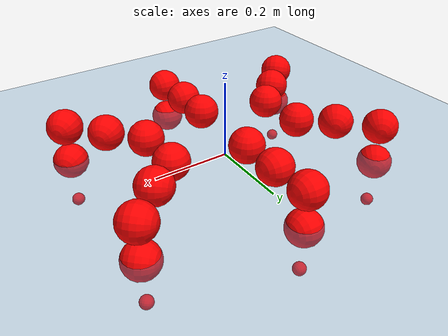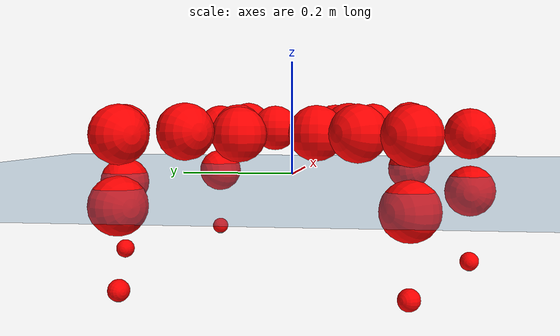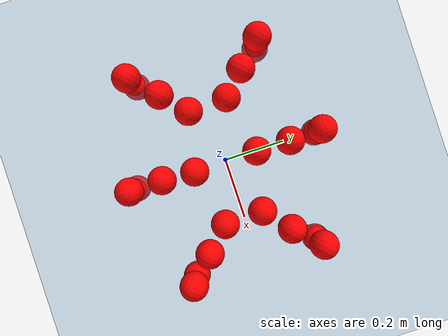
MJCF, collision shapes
<mujoco model="Golem">
  <compiler angle="radian" assetdir="assets" balanceinertia="true" inertiafromgeom="false"/>

  <option timestep="0.005" density="1.2" viscosity="2e-05"/>

  <size nkey="1"/>

  <visual>
    <quality shadowsize="8192"/>
    <map shadowclip="0.5"/>
  </visual>

  <default>
    <default class="/">
      <joint armature="0.01" damping="0.01" frictionloss="0.01"/>
      <geom contype="0" conaffinity="0" group="1" solref="-1000 -80"/>
      <site size="0.01 0.005 0.005" group="5"/>
      <general forcelimited="true" biastype="affine" gainprm="25" biasprm="0 -25 -0.5"/>
      <default class="visual">
        <geom type="mesh" group="2"/>
      </default>
      <default class="collision">
        <geom group="3"/>
      </default>
      <default class="foot">
        <geom size="0.01 0 0" condim="6" group="4" priority="1" solimp="0.015 1 0.01"/>
      </default>
      <default class="reward_collision_sphere">
        <geom group="5" rgba="1 0 0 1"/>
      </default>
    </default>
  </default>

  <asset>
    <texture type="skybox" colorspace="auto" name="//unnamed_texture_0" builtin="gradient" rgb1="0.95 0.95 0.95" rgb2="0.95 0.95 0.95" width="100" height="600"/>
    <texture type="2d" colorspace="auto" name="texplane" builtin="checker" rgb1="0.345 0.575 0.748" rgb2="0.345 0.575 0.748" markrgb="1 1 1" width="512" height="512"/>
    <material name="MatPlane" class="/" texture="texplane" texuniform="true" texrepeat="2 2" specular="0.9"/>
    <mesh name="body" class="/" file="body.stl" scale="0.001 0.001 0.001"/>
    <mesh name="coxa" class="/" file="coxa.stl" scale="0.001 0.001 0.001"/>
    <mesh name="femur" class="/" file="femur.stl" scale="0.001 0.001 0.001"/>
    <mesh name="tibia" class="/" file="tibia.stl" scale="0.001 0.001 0.001"/>
    <mesh name="tarsus" class="/" file="tarsus.stl" scale="0.001 0.001 0.001"/>
  </asset>

  <worldbody>
    <geom name="floor" class="/" size="100 100 0.125" type="plane" group="0" material="MatPlane"/>
    <light name="toplight_shadow" class="/" pos="0 0 5" dir="0.0990148 0.0990148 -0.990148" type="directional" ambient="0.04 0.04 0.04" diffuse="0.55 0.55 0.55" specular="0.12 0.12 0.12"/>
    <light name="toplight_fill" class="/" pos="0 0 5" dir="0.0990148 0.0990148 -0.990148" type="directional" castshadow="false" ambient="0.04 0.04 0.04" diffuse="0.3 0.3 0.3" specular="0.08 0.08 0.08"/>
    <body name="trunk" pos="0.00229188 -0.000318229 0.00151577" quat="0.999996 0.00200178 -0.00106412 0.00146159">
      <inertial pos="-0.0021482 -0.00656511 -0.00664208" quat="0.999998 0.00125708 -0.00172124 1.40489e-05" mass="5.3545" diaginertia="0.022419 0.00981309 0.0258485"/>
      <joint name="//unnamed_joint_0" type="free"/>
      <geom name="//unnamed_geom_1" class="/" pos="0 0 0.0761632" quat="1 0 0 0" type="mesh" rgba="0.9 0.9 0.9 1" mesh="body"/>
      <site name="imu" class="/" pos="0.148729 -0.0179944 0.118624" size="0.0111165"/>
      <camera name="track" class="/" pos="0 -1.97943 0" quat="0.707107 0.707107 0 0" mode="trackcom"/>
      <camera name="ego_camera" class="/" pos="0.150173 0 0.119005" quat="-0.5 -0.5 0.5 0.5"/>
      <body name="coxa_RR" pos="-0.202306 -0.0860882 0.0758246" quat="0.382727 -0.000591709 0.00193806 -0.923859">
        <inertial pos="-0.00127077 0.000649331 0.000530534" quat="0.999437 -0.0325816 -0.00589051 -0.00534888" mass="0.239202" diaginertia="0.0195516 0.00909637 0.0219602"/>
        <joint name="coxa_joint_RR" class="/" pos="0 0 0" axis="-0.00346332 0.00622684 -0.999975" range="-3.14733 3.2706" armature="0.00761373" damping="0" frictionloss="0.0115404"/>
        <geom name="//unnamed_geom_2" class="/" type="mesh" rgba="0.2 0.2 0.2 1" mesh="coxa"/>
        <geom name="//unnamed_geom_3" class="reward_collision_sphere" size="0.0444658" pos="-0.0346553 0 0"/>
        <body name="femur_RR" pos="0.0686399 -0.00407345 0.00176728" quat="0.499974 -0.500108 0.499738 0.50018">
          <inertial pos="-0.00481468 0.000726708 -0.000427374" quat="0.999752 0.0209495 -0.00671093 -0.0033692" mass="0.270633" diaginertia="0.0202389 0.00934016 0.0242403"/>
          <joint name="femur_joint_RR" class="/" pos="0 0 0" axis="-0.000472596 -0.00062559 -1" range="-3.15203 3.16146" armature="0.0107642" damping="0.0463507" frictionloss="0.0115866"/>
          <geom name="//unnamed_geom_4" class="/" type="mesh" rgba="0.9 0.9 0.9 1" mesh="femur"/>
          <geom name="//unnamed_geom_5" class="reward_collision_sphere" size="0.0444658"/>
          <body name="tibia_RR" pos="0.000284685 -0.112288 -0.000565045" quat="-3.42934e-05 1 -4.14373e-05 6.98499e-05">
            <inertial pos="0.0025132 0.00273225 0.00171865" quat="0.999993 -0.0025535 0.00232265 0.00134878" mass="0.252193" diaginertia="0.0208393 0.0092793 0.0230753"/>
            <joint name="tibia_joint_RR" class="/" pos="0 0 0" axis="-0.0151702 0.00704987 0.99986" range="-3.1598 3.12726" armature="0.0108408" damping="0.0159826" frictionloss="0.0114006"/>
            <geom name="//unnamed_geom_6" class="/" type="mesh" rgba="0.2 0.2 0.2 1" mesh="tibia"/>
            <geom name="//unnamed_geom_7" class="reward_collision_sphere" size="0.0444658"/>
            <body name="tarsus_RR" pos="0.105706 -0.00265255 -0.000571504" quat="1 9.89989e-06 -0.000486305 -1.5802e-05">
              <inertial pos="0.0733696 -0.00134987 -0.000803371" quat="0.501096 0.499868 0.499146 0.499888" mass="0.258637" diaginertia="0.018695 0.00870266 0.0227689"/>
              <joint name="tarsus_joint_RR" class="/" pos="0 0 0" axis="-0.0170906 -0.00830237 0.999819" stiffness="0.00727929" range="-3.13237 3.13355" armature="0.0123345" damping="0.0509687" frictionloss="0.012821"/>
              <geom name="//unnamed_geom_8" class="/" type="mesh" rgba="0.9 0.9 0.9 1" mesh="tarsus"/>
              <geom name="foot_1" class="foot" size="0.00956993" pos="0.12938 0 0" quat="0 -0.707107 0 0.707107"/>
              <geom name="//unnamed_geom_10" class="reward_collision_sphere" size="0.0444658"/>
              <geom name="//unnamed_geom_11" class="reward_collision_sphere" size="0.0166747" pos="0.124181 0 0"/>
              <site name="foot_1" class="foot" pos="0.12938 0 0" quat="0 -0.707107 0 0.707107" size="0.0111165"/>
            </body>
          </body>
        </body>
      </body>
      <body name="coxa_RM" pos="0.00477095 -0.135255 0.0812371" quat="0.707218 0.000489544 -0.000194044 -0.706995">
        <inertial pos="0.00450155 0.00159424 -0.00204386" quat="0.999996 -0.000471218 -0.000528281 -0.00264628" mass="0.255411" diaginertia="0.0192274 0.00893215 0.0226601"/>
        <joint name="coxa_joint_RM" class="/" pos="0 0 0" axis="-4.71251e-06 -3.89082e-06 -1" range="-3.1979 3.15294" armature="0.00982574" damping="0.0135036" frictionloss="0.0109106"/>
        <geom name="//unnamed_geom_12" class="/" type="mesh" rgba="0.2 0.2 0.2 1" mesh="coxa"/>
        <geom name="//unnamed_geom_13" class="reward_collision_sphere" size="0.0444658" pos="-0.0346553 0 0"/>
        <body name="femur_RM" pos="0.0687132 -0.00607398 -0.00446122" quat="0.4999 -0.500196 0.500026 0.499878">
          <inertial pos="0.00202155 0.000378764 0.00110726" quat="0.999551 -0.0177893 0.0228741 0.00762754" mass="0.299221" diaginertia="0.0221815 0.0104524 0.0251281"/>
          <joint name="femur_joint_RM" class="/" pos="0 0 0" axis="-0.00129245 0.00106563 -0.999999" range="-3.014 3.09869" armature="0.0121449" damping="0.0253456" frictionloss="0.0109838"/>
          <geom name="//unnamed_geom_14" class="/" type="mesh" rgba="0.9 0.9 0.9 1" mesh="femur"/>
          <geom name="//unnamed_geom_15" class="reward_collision_sphere" size="0.0444658"/>
          <body name="tibia_RM" pos="0.00440238 -0.108445 0.00166572" quat="-0.00235874 0.999995 -0.00208893 -0.000783719">
            <inertial pos="0.00188195 0.000553179 -0.00207" quat="0.999911 0.000799694 0.0131536 -0.00228297" mass="0.275377" diaginertia="0.0197615 0.00975861 0.0250772"/>
            <joint name="tibia_joint_RM" class="/" pos="0 0 0" axis="0.00210473 0.00792636 0.999966" stiffness="0.0258451" range="-3.13558 3.12374" armature="0.00980574" damping="0.0179736" frictionloss="0.00995423"/>
            <geom name="//unnamed_geom_16" class="/" type="mesh" rgba="0.2 0.2 0.2 1" mesh="tibia"/>
            <geom name="//unnamed_geom_17" class="reward_collision_sphere" size="0.0444658"/>
            <body name="tarsus_RM" pos="0.100292 0.0012143 0.00278407" quat="0.999997 -0.000513958 0.0020973 -0.000756947">
              <inertial pos="0.068494 0.00206269 -0.000261679" quat="0.497494 0.502894 0.504148 0.495411" mass="0.278635" diaginertia="0.0203405 0.00964024 0.0238896"/>
              <joint name="tarsus_joint_RM" class="/" pos="0 0 0" axis="0.0050865 -0.0177218 0.99983" stiffness="0.0032622" range="-3.10104 3.01059" armature="0.0114753" damping="0.00864421" frictionloss="0.0146855"/>
              <geom name="//unnamed_geom_18" class="/" type="mesh" rgba="0.9 0.9 0.9 1" mesh="tarsus"/>
              <geom name="foot_2" class="foot" size="0.0119956" pos="0.12938 0 0" quat="0 -0.707107 0 0.707107"/>
              <geom name="//unnamed_geom_20" class="reward_collision_sphere" size="0.0444658"/>
              <geom name="//unnamed_geom_21" class="reward_collision_sphere" size="0.0166747" pos="0.124181 0 0"/>
              <site name="foot_2" class="foot" pos="0.12938 0 0" quat="0 -0.707107 0 0.707107" size="0.0111165"/>
            </body>
          </body>
        </body>
      </body>
      <body name="coxa_RF" pos="0.21005 -0.0856579 0.0796234" quat="0.9238 -0.00140812 -0.00180141 -0.382868">
        <inertial pos="-0.00483411 -0.00509824 0.000288284" quat="0.999988 -0.00325265 -0.00165354 0.00318083" mass="0.280383" diaginertia="0.0197919 0.00954441 0.0237628"/>
        <joint name="coxa_joint_RF" class="/" pos="0 0 0" axis="-0.00233325 -0.00306162 -0.999993" stiffness="0.0349084" range="-3.13242 3.24164" armature="0.010414" damping="0" frictionloss="0.0124233"/>
        <geom name="//unnamed_geom_22" class="/" type="mesh" rgba="0.2 0.2 0.2 1" mesh="coxa"/>
        <geom name="//unnamed_geom_23" class="reward_collision_sphere" size="0.0444658" pos="-0.0346553 0 0"/>
        <body name="femur_RF" pos="0.0672927 -0.00069027 0.00290536" quat="0.500725 -0.501129 0.498359 0.499782">
          <inertial pos="0.00150371 0.000691387 -0.00592743" quat="0.99982 0.0090606 -0.00336714 -0.0163056" mass="0.289639" diaginertia="0.0222435 0.0101976 0.0272279"/>
          <joint name="femur_joint_RF" class="/" pos="0 0 0" axis="-0.0263033 -0.0168837 -0.999511" range="-3.18079 3.14959" armature="0.00727479" damping="0.0200924" frictionloss="0.00963158"/>
          <geom name="//unnamed_geom_24" class="/" type="mesh" rgba="0.9 0.9 0.9 1" mesh="femur"/>
          <geom name="//unnamed_geom_25" class="reward_collision_sphere" size="0.0444658"/>
          <body name="tibia_RF" pos="-0.0036898 -0.106625 0.00070911" quat="-7.53847e-05 1 -9.26128e-05 -0.000115377">
            <inertial pos="-0.000270558 0.000863859 -0.000502529" quat="0.999891 -0.00767157 -0.0101632 0.00751037" mass="0.276259" diaginertia="0.0219743 0.00989159 0.0226786"/>
            <joint name="tibia_joint_RF" class="/" pos="0 0 0" axis="0.000598315 -0.00475592 0.999989" stiffness="0.00718987" range="-3.14613 3.03587" armature="0.0124878" damping="0.00647927" frictionloss="0.0119093"/>
            <geom name="//unnamed_geom_26" class="/" type="mesh" rgba="0.2 0.2 0.2 1" mesh="tibia"/>
            <geom name="//unnamed_geom_27" class="reward_collision_sphere" size="0.0444658"/>
            <body name="tarsus_RF" pos="0.0985408 -0.00043196 -0.000570243" quat="0.999995 -0.0010441 -0.000830327 -0.00277172">
              <inertial pos="0.06787 -2.97701e-05 0.000684514" quat="0.501307 0.497212 0.49629 0.505142" mass="0.276112" diaginertia="0.0207476 0.00942242 0.0254858"/>
              <joint name="tarsus_joint_RF" class="/" pos="0 0 0" axis="0.00594997 -0.00597693 0.999964" range="-3.14839 3.10344" armature="0.0110509" damping="0.0146388" frictionloss="0.010528"/>
              <geom name="//unnamed_geom_28" class="/" type="mesh" rgba="0.9 0.9 0.9 1" mesh="tarsus"/>
              <geom name="foot_3" class="foot" size="0.00928843" pos="0.12938 0 0" quat="0 -0.707107 0 0.707107"/>
              <geom name="//unnamed_geom_30" class="reward_collision_sphere" size="0.0444658"/>
              <geom name="//unnamed_geom_31" class="reward_collision_sphere" size="0.0166747" pos="0.124181 0 0"/>
              <site name="foot_3" class="foot" pos="0.12938 0 0" quat="0 -0.707107 0 0.707107" size="0.0111165"/>
            </body>
          </body>
        </body>
      </body>
      <body name="coxa_LR" pos="-0.206716 0.0865793 0.0733055" quat="0.38398 0.00153778 0.000490159 0.92334">
        <inertial pos="-0.00041507 -0.00139635 0.0018798" quat="0.999995 0.00323672 -0.000279889 -6.6915e-05" mass="0.276286" diaginertia="0.0217812 0.00988006 0.026003"/>
        <joint name="coxa_joint_LR" class="/" pos="0 0 0" axis="-0.0198944 -8.20384e-05 -0.999802" range="-3.20804 3.13644" armature="0.0109074" damping="0" frictionloss="0.0112538"/>
        <geom name="//unnamed_geom_32" class="/" type="mesh" rgba="0.2 0.2 0.2 1" mesh="coxa"/>
        <geom name="//unnamed_geom_33" class="reward_collision_sphere" size="0.0444658" pos="-0.0346553 0 0"/>
        <body name="femur_LR" pos="0.0642656 0.000785179 0.00521652" quat="0.499617 -0.500407 0.500228 0.499748">
          <inertial pos="0.000538238 -0.00251755 -5.18476e-05" quat="0.999991 -0.00037674 -0.00141231 0.00394737" mass="0.278284" diaginertia="0.0204898 0.00951267 0.023485"/>
          <joint name="femur_joint_LR" class="/" pos="0 0 0" axis="0.0155781 0.00129861 0.999878" stiffness="0.0121149" range="-3.04881 3.0513" armature="0.0114673" damping="0.0295993" frictionloss="0.0101177"/>
          <geom name="//unnamed_geom_34" class="/" type="mesh" rgba="0.9 0.9 0.9 1" mesh="femur"/>
          <geom name="//unnamed_geom_35" class="reward_collision_sphere" size="0.0444658"/>
          <body name="tibia_LR" pos="0.00309009 -0.110301 -0.00012733" quat="-0.000680385 1 0.000663967 -3.10353e-05">
            <inertial pos="0.0063239 -0.00152221 0.00504242" quat="0.999926 0.0117484 0.00304477 -0.000455486" mass="0.274518" diaginertia="0.0200089 0.00875037 0.0235908"/>
            <joint name="tibia_joint_LR" class="/" pos="0 0 0" axis="-0.00337362 -0.00221802 -0.999992" stiffness="0.00987081" range="-3.23931 3.08137" armature="0.0111607" damping="0.00601415" frictionloss="0.0104233"/>
            <geom name="//unnamed_geom_36" class="/" type="mesh" rgba="0.2 0.2 0.2 1" mesh="tibia"/>
            <geom name="//unnamed_geom_37" class="reward_collision_sphere" size="0.0444658"/>
            <body name="tarsus_LR" pos="0.103999 0.000778342 0.0018564" quat="1 4.49465e-05 -9.94221e-05 3.22148e-05">
              <inertial pos="0.0708554 -0.000509307 0.00187296" quat="0.503742 0.493789 0.50084 0.501574" mass="0.25846" diaginertia="0.0195689 0.00878769 0.0224324"/>
              <joint name="tarsus_joint_LR" class="/" pos="0 0 0" axis="0.0202632 -0.015814 -0.99967" range="-3.1887 3.19605" armature="0.00975146" damping="0.020187" frictionloss="0.00959962"/>
              <geom name="//unnamed_geom_38" class="/" type="mesh" rgba="0.9 0.9 0.9 1" mesh="tarsus"/>
              <geom name="foot_4" class="foot" size="0.0119225" pos="0.12938 0 0" quat="0.707107 0 -0.707107 0"/>
              <geom name="//unnamed_geom_40" class="reward_collision_sphere" size="0.0444658"/>
              <geom name="//unnamed_geom_41" class="reward_collision_sphere" size="0.0166747" pos="0.124181 0 0"/>
              <site name="foot_4" class="foot" pos="0.12938 0 0" quat="0.707107 0 -0.707107 0" size="0.0111165"/>
            </body>
          </body>
        </body>
      </body>
      <body name="coxa_LM" pos="0.00277217 0.134102 0.0780848" quat="0.707113 -0.000367289 -5.3066e-05 0.707101">
        <inertial pos="-0.00486613 -0.00604774 0.00175781" quat="0.999999 0.000696098 -0.000708521 0.000863546" mass="0.278274" diaginertia="0.0212353 0.00955963 0.0243144"/>
        <joint name="coxa_joint_LM" class="/" pos="0 0 0" axis="-0.0125433 0.00209996 -0.999919" stiffness="0.0131147" range="-3.16088 3.16071" armature="0.00897618" damping="0.0377044" frictionloss="0.010632"/>
        <geom name="//unnamed_geom_42" class="/" type="mesh" rgba="0.2 0.2 0.2 1" mesh="coxa"/>
        <geom name="//unnamed_geom_43" class="reward_collision_sphere" size="0.0444658" pos="-0.0346553 0 0"/>
        <body name="femur_LM" pos="0.0729226 -0.00151524 5.52727e-05" quat="0.497951 -0.501522 0.499439 0.501081">
          <inertial pos="0.00166572 -0.000964437 -0.00256032" quat="0.999898 -0.00336402 0.00812254 0.0112546" mass="0.282755" diaginertia="0.0203605 0.00995365 0.0251404"/>
          <joint name="femur_joint_LM" class="/" pos="0 0 0" axis="-0.00851692 0.00461571 0.999953" range="-3.1204 3.13511" armature="0.0145662" damping="0.0246643" frictionloss="0.012177"/>
          <geom name="//unnamed_geom_44" class="/" type="mesh" rgba="0.9 0.9 0.9 1" mesh="femur"/>
          <geom name="//unnamed_geom_45" class="reward_collision_sphere" size="0.0444658"/>
          <body name="tibia_LM" pos="-0.000322739 -0.103979 0.00245027" quat="0.000298983 1 -0.000271812 0.000607279">
            <inertial pos="0.00156122 -0.00419054 0.000106088" quat="0.999975 0.00388351 0.00498924 -0.00307539" mass="0.287242" diaginertia="0.0209696 0.00921045 0.0225253"/>
            <joint name="tibia_joint_LM" class="/" pos="0 0 0" axis="-0.0052809 1.56752e-05 -0.999986" range="-3.16523 3.09142" armature="0.0113115" damping="0.0262899" frictionloss="0.0117199"/>
            <geom name="//unnamed_geom_46" class="/" type="mesh" rgba="0.2 0.2 0.2 1" mesh="tibia"/>
            <geom name="//unnamed_geom_47" class="reward_collision_sphere" size="0.0444658"/>
            <body name="tarsus_LM" pos="0.0991494 0.00243238 0.00158531" quat="1 0.000293801 7.4983e-05 -7.15471e-05">
              <inertial pos="0.0660908 -0.000770677 8.07178e-05" quat="0.499861 0.501609 0.499098 0.499429" mass="0.239919" diaginertia="0.0195035 0.00923822 0.0237198"/>
              <joint name="tarsus_joint_LM" class="/" pos="0 0 0" axis="-0.00202522 -0.00213374 -0.999996" range="-3.13709 3.17668" armature="0.0106405" damping="0" frictionloss="0.0110258"/>
              <geom name="//unnamed_geom_48" class="/" type="mesh" rgba="0.9 0.9 0.9 1" mesh="tarsus"/>
              <geom name="foot_5" class="foot" size="0.0118317" pos="0.12938 0 0" quat="0.707107 0 -0.707107 0"/>
              <geom name="//unnamed_geom_50" class="reward_collision_sphere" size="0.0444658"/>
              <geom name="//unnamed_geom_51" class="reward_collision_sphere" size="0.0166747" pos="0.124181 0 0"/>
              <site name="foot_5" class="foot" pos="0.12938 0 0" quat="0.707107 0 -0.707107 0" size="0.0111165"/>
            </body>
          </body>
        </body>
      </body>
      <body name="coxa_LF" pos="0.207634 0.0839421 0.0772061" quat="0.923927 3.26792e-05 -3.04537e-05 0.382569">
        <inertial pos="-0.000664922 0.00218849 0.000477815" quat="1 -0.00056056 -4.01345e-05 -8.92917e-06" mass="0.280422" diaginertia="0.0206041 0.00921718 0.0230184"/>
        <joint name="coxa_joint_LF" class="/" pos="0 0 0" axis="0.00942482 0.0259232 -0.99962" range="-3.09626 3.13065" armature="0.0118233" damping="0.0099276" frictionloss="0.0111668"/>
        <geom name="//unnamed_geom_52" class="/" type="mesh" rgba="0.2 0.2 0.2 1" mesh="coxa"/>
        <geom name="//unnamed_geom_53" class="reward_collision_sphere" size="0.0444658" pos="-0.0346553 0 0"/>
        <body name="femur_LF" pos="0.0690681 -0.00629736 0.00653373" quat="0.500146 -0.500699 0.500004 0.499151">
          <inertial pos="0.00380857 0.000263143 -0.00193332" quat="0.999988 -0.000156302 -0.00372882 0.00319521" mass="0.269075" diaginertia="0.0204505 0.00991962 0.0251623"/>
          <joint name="femur_joint_LF" class="/" pos="0 0 0" axis="0.0176855 -0.00149989 0.999842" range="-3.1483 3.23145" armature="0.0128583" damping="0.0169003" frictionloss="0.0124012"/>
          <geom name="//unnamed_geom_54" class="/" type="mesh" rgba="0.9 0.9 0.9 1" mesh="femur"/>
          <geom name="//unnamed_geom_55" class="reward_collision_sphere" size="0.0444658"/>
          <body name="tibia_LF" pos="0.00509101 -0.110043 0.000148596" quat="-0.000593358 1 0.000592367 -0.000488385">
            <inertial pos="0.00165069 0.000222769 0.002414" quat="0.999719 -0.0201923 0.0110566 -0.00570008" mass="0.282309" diaginertia="0.0207171 0.0096877 0.024126"/>
            <joint name="tibia_joint_LF" class="/" pos="0 0 0" axis="-0.00357347 0.000295649 -0.999994" range="-3.12726 3.14713" armature="0.0147649" damping="0.0336754" frictionloss="0.0114617"/>
            <geom name="//unnamed_geom_56" class="/" type="mesh" rgba="0.2 0.2 0.2 1" mesh="tibia"/>
            <geom name="//unnamed_geom_57" class="reward_collision_sphere" size="0.0444658"/>
            <body name="tarsus_LF" pos="0.0985627 0.000494588 -6.78491e-06" quat="0.999995 -0.0020583 0.0012886 -0.00214587">
              <inertial pos="0.0663634 0.00442014 0.00185411" quat="0.501644 0.503748 0.50072 0.493832" mass="0.29055" diaginertia="0.0208003 0.00987513 0.0239667"/>
              <joint name="tarsus_joint_LF" class="/" pos="0 0 0" axis="0.0140395 -0.0157278 -0.999778" stiffness="0.00471213" range="-3.21762 3.18554" armature="0.0122823" damping="0" frictionloss="0.0107287"/>
              <geom name="//unnamed_geom_58" class="/" type="mesh" rgba="0.9 0.9 0.9 1" mesh="tarsus"/>
              <geom name="foot_6" class="foot" size="0.0124267" pos="0.12938 0 0" quat="0.707107 0 -0.707107 0"/>
              <geom name="//unnamed_geom_60" class="reward_collision_sphere" size="0.0444658"/>
              <geom name="//unnamed_geom_61" class="reward_collision_sphere" size="0.0166747" pos="0.124181 0 0"/>
              <site name="foot_6" class="foot" pos="0.12938 0 0" quat="0.707107 0 -0.707107 0" size="0.0111165"/>
            </body>
          </body>
        </body>
      </body>
    </body>
  </worldbody>

  <contact>
    <pair class="/" geom1="floor" geom2="foot_1" name="//unnamed_contact_0"/>
    <pair class="/" geom1="floor" geom2="foot_2" name="//unnamed_contact_1"/>
    <pair class="/" geom1="floor" geom2="foot_3" name="//unnamed_contact_2"/>
    <pair class="/" geom1="floor" geom2="foot_4" name="//unnamed_contact_3"/>
    <pair class="/" geom1="floor" geom2="foot_5" name="//unnamed_contact_4"/>
    <pair class="/" geom1="floor" geom2="foot_6" name="//unnamed_contact_5"/>
  </contact>

  <actuator>
    <general name="coxa_joint_RR" class="/" joint="coxa_joint_RR" forcerange="-8.77138 8.77138" gainprm="26.1867" biasprm="0 -26.1867 -0.559801"/>
    <general name="femur_joint_RR" class="/" joint="femur_joint_RR" forcerange="-8.00984 8.00984" gainprm="26.1867" biasprm="0 -26.1867 -0.559801"/>
    <general name="tibia_joint_RR" class="/" joint="tibia_joint_RR" forcerange="-8.5109 8.5109" gainprm="26.1867" biasprm="0 -26.1867 -0.559801"/>
    <general name="tarsus_joint_RR" class="/" joint="tarsus_joint_RR" forcerange="-7.50719 7.50719" gainprm="26.1867" biasprm="0 -26.1867 -0.559801"/>
    <general name="coxa_joint_RM" class="/" joint="coxa_joint_RM" forcerange="-7.57181 7.57181" gainprm="26.1867" biasprm="0 -26.1867 -0.559801"/>
    <general name="femur_joint_RM" class="/" joint="femur_joint_RM" forcerange="-8.99568 8.99568" gainprm="26.1867" biasprm="0 -26.1867 -0.559801"/>
    <general name="tibia_joint_RM" class="/" joint="tibia_joint_RM" forcerange="-8.20417 8.20417" gainprm="26.1867" biasprm="0 -26.1867 -0.559801"/>
    <general name="tarsus_joint_RM" class="/" joint="tarsus_joint_RM" forcerange="-8.53007 8.53007" gainprm="26.1867" biasprm="0 -26.1867 -0.559801"/>
    <general name="coxa_joint_RF" class="/" joint="coxa_joint_RF" forcerange="-9.15495 9.15495" gainprm="26.1867" biasprm="0 -26.1867 -0.559801"/>
    <general name="femur_joint_RF" class="/" joint="femur_joint_RF" forcerange="-8.86265 8.86265" gainprm="26.1867" biasprm="0 -26.1867 -0.559801"/>
    <general name="tibia_joint_RF" class="/" joint="tibia_joint_RF" forcerange="-7.48642 7.48642" gainprm="26.1867" biasprm="0 -26.1867 -0.559801"/>
    <general name="tarsus_joint_RF" class="/" joint="tarsus_joint_RF" forcerange="-8.31394 8.31394" gainprm="26.1867" biasprm="0 -26.1867 -0.559801"/>
    <general name="coxa_joint_LR" class="/" joint="coxa_joint_LR" forcerange="-7.42641 7.42641" gainprm="26.1867" biasprm="0 -26.1867 -0.559801"/>
    <general name="femur_joint_LR" class="/" joint="femur_joint_LR" forcerange="-8.2143 8.2143" gainprm="26.1867" biasprm="0 -26.1867 -0.559801"/>
    <general name="tibia_joint_LR" class="/" joint="tibia_joint_LR" forcerange="-9.70194 9.70194" gainprm="26.1867" biasprm="0 -26.1867 -0.559801"/>
    <general name="tarsus_joint_LR" class="/" joint="tarsus_joint_LR" forcerange="-6.31446 6.31446" gainprm="26.1867" biasprm="0 -26.1867 -0.559801"/>
    <general name="coxa_joint_LM" class="/" joint="coxa_joint_LM" forcerange="-8.11407 8.11407" gainprm="26.1867" biasprm="0 -26.1867 -0.559801"/>
    <general name="femur_joint_LM" class="/" joint="femur_joint_LM" forcerange="-7.97217 7.97217" gainprm="26.1867" biasprm="0 -26.1867 -0.559801"/>
    <general name="tibia_joint_LM" class="/" joint="tibia_joint_LM" forcerange="-8.31183 8.31183" gainprm="26.1867" biasprm="0 -26.1867 -0.559801"/>
    <general name="tarsus_joint_LM" class="/" joint="tarsus_joint_LM" forcerange="-7.82955 7.82955" gainprm="26.1867" biasprm="0 -26.1867 -0.559801"/>
    <general name="coxa_joint_LF" class="/" joint="coxa_joint_LF" forcerange="-8.35053 8.35053" gainprm="26.1867" biasprm="0 -26.1867 -0.559801"/>
    <general name="femur_joint_LF" class="/" joint="femur_joint_LF" forcerange="-8.12044 8.12044" gainprm="26.1867" biasprm="0 -26.1867 -0.559801"/>
    <general name="tibia_joint_LF" class="/" joint="tibia_joint_LF" forcerange="-8.53437 8.53437" gainprm="26.1867" biasprm="0 -26.1867 -0.559801"/>
    <general name="tarsus_joint_LF" class="/" joint="tarsus_joint_LF" forcerange="-7.45887 7.45887" gainprm="26.1867" biasprm="0 -26.1867 -0.559801"/>
  </actuator>

  <sensor>
    <gyro site="imu" name="imu_angular_velocity"/>
    <velocimeter site="imu" name="imu_linear_velocity"/>
    <framelinvel objtype="site" objname="foot_1" name="foot_1_global_linear_velocity"/>
    <framelinvel objtype="site" objname="foot_2" name="foot_2_global_linear_velocity"/>
    <framelinvel objtype="site" objname="foot_3" name="foot_3_global_linear_velocity"/>
    <framelinvel objtype="site" objname="foot_4" name="foot_4_global_linear_velocity"/>
    <framelinvel objtype="site" objname="foot_5" name="foot_5_global_linear_velocity"/>
    <framelinvel objtype="site" objname="foot_6" name="foot_6_global_linear_velocity"/>
  </sensor>

  <keyframe>
    <key name="home" qpos="0 0 0.1457 1 0 0 0 0 0 0 0 0 0 0 0 0 0 0 0 0 0 0 0 0 0 0 0 0 0 0 0"/>
  </keyframe>
</mujoco>
